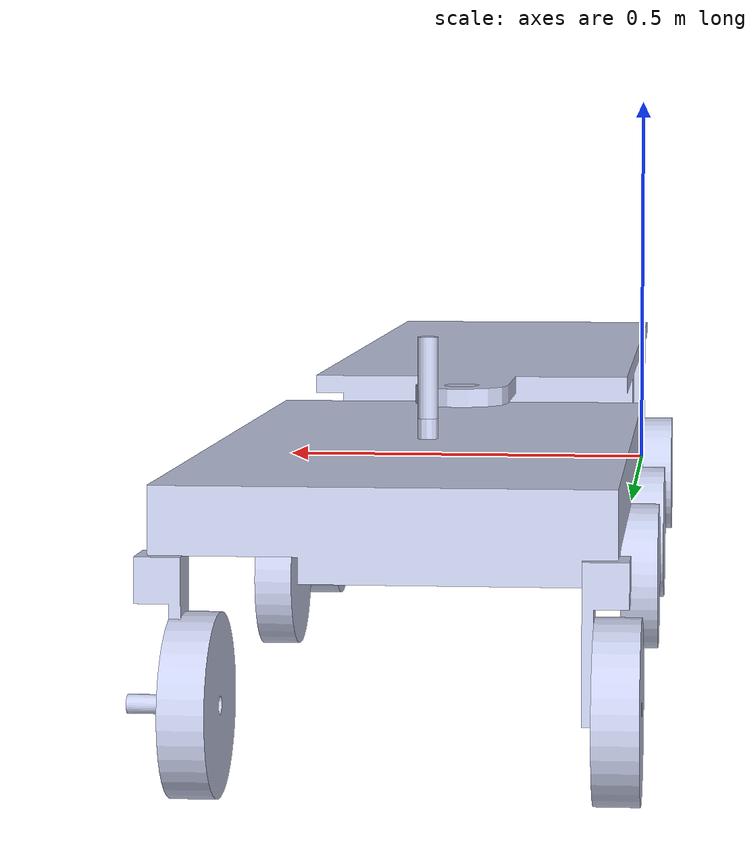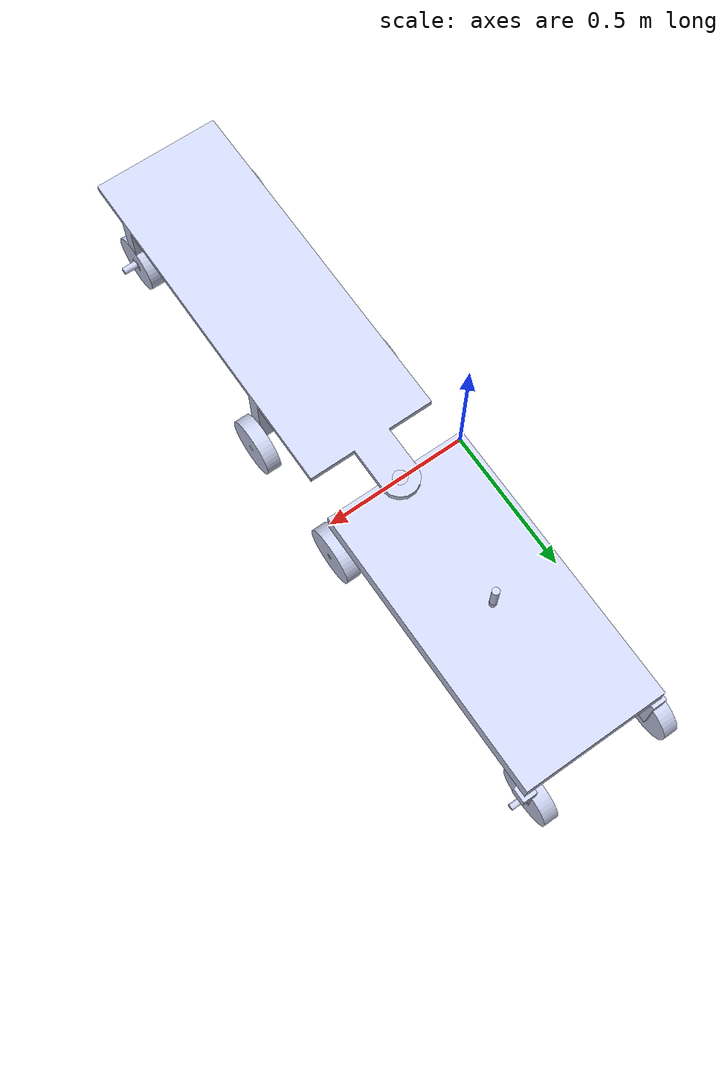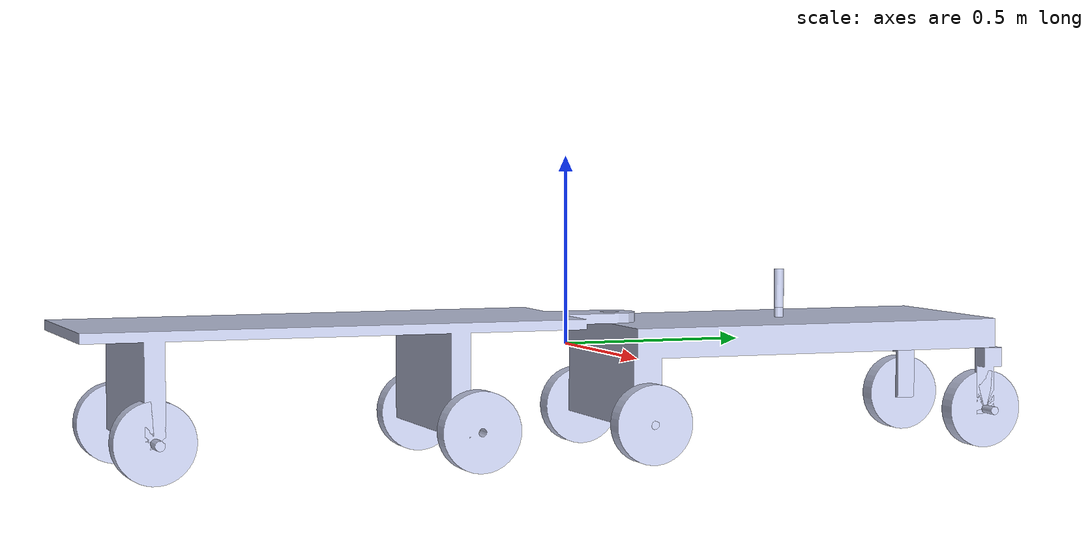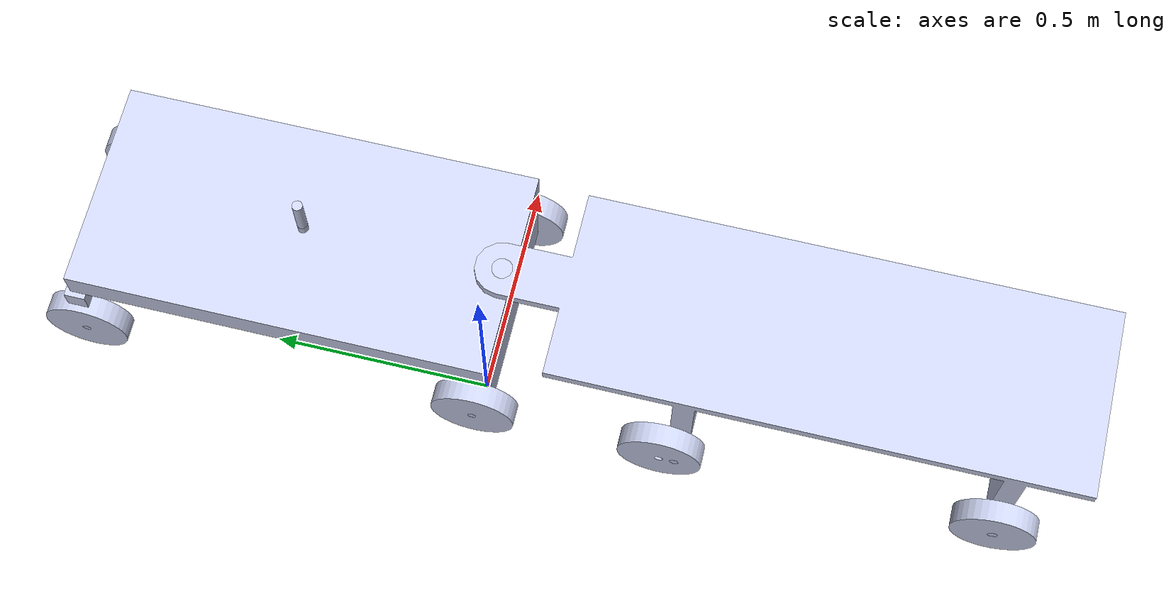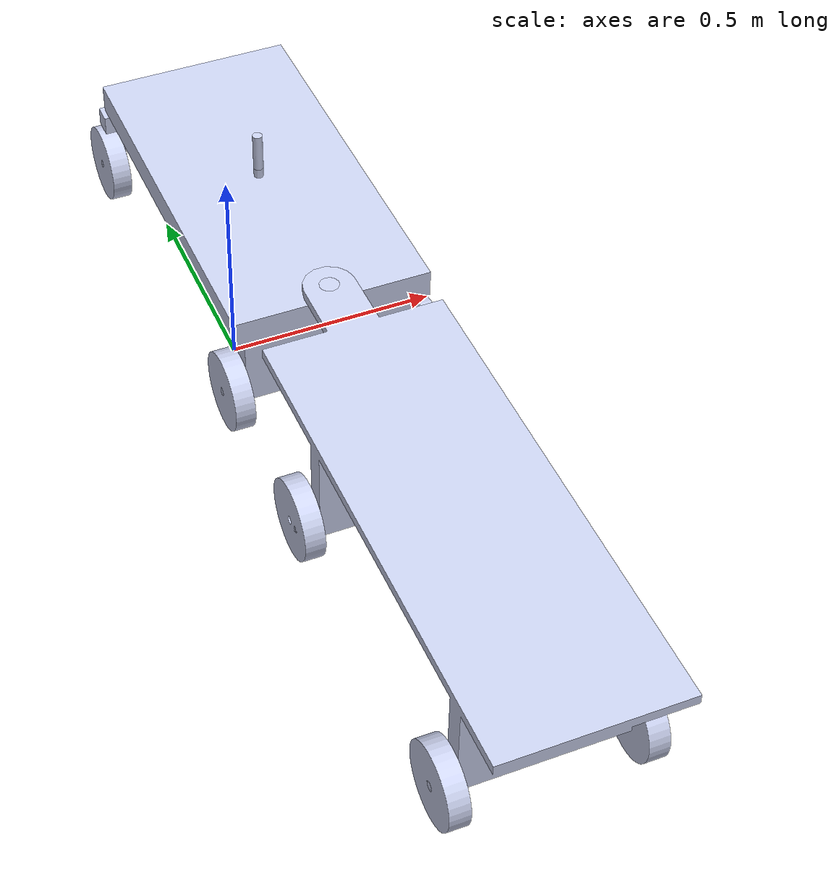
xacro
<?xml version="1.0"?>
<robot
  name="car_and_trailer" xmlns:xacro="http://ros.org/wiki/xacro">
  <link
    name="base_link">
    <inertial>
      <origin
        xyz="0.254 0.442216009225132 0.0199373734974326"
        rpy="0 0 0" />
      <mass
        value="45.8674211610964" />
      <inertia
        ixx="4.71504582583239"
        ixy="-7.73092194649668E-17"
        ixz="-1.15927084096081E-16"
        iyy="1.08472485190803"
        iyz="-0.316618072863205"
        izz="5.55558636298786" />
    </inertial>
    <visual>
      <origin
        xyz="0 0 0"
        rpy="0 0 0" />
      <geometry>
        <mesh
          filename="package://car_and_trailer/meshes/base_link.STL" />
      </geometry>
      <material
        name="">
        <color
          rgba="0.792156862745098 0.819607843137255 0.933333333333333 1" />
      </material>
    </visual>
    <collision>
      <origin
        xyz="0 0 0"
        rpy="0 0 0" />
      <geometry>
        <mesh
          filename="package://car_and_trailer/meshes/base_link.STL" />
      </geometry>
    </collision>
  </link>
  <link
    name="Steer_Left">
    <inertial>
      <origin
        xyz="-0.488789550969635 1.0033 0.0730308461748111"
        rpy="0 0 0" />
      <mass
        value="0.205068851277686" />
      <inertia
        ixx="0.000542814148788568"
        ixy="8.49018783728658E-19"
        ixz="-7.80565059903451E-05"
        iyy="0.000546349438812291"
        iyz="1.09592188639126E-18"
        izz="9.40760107910819E-05" />
    </inertial>
    <visual>
      <origin
        xyz="0 0 0"
        rpy="0 0 0" />
      <geometry>
        <mesh
          filename="package://car_and_trailer/meshes/Steer_Left.STL" />
      </geometry>
      <material
        name="">
        <color
          rgba="0.792156862745098 0.819607843137255 0.933333333333333 1" />
      </material>
    </visual>
    <collision>
      <origin
        xyz="0 0 0"
        rpy="0 0 0" />
      <geometry>
        <mesh
          filename="package://car_and_trailer/meshes/Steer_Left.STL" />
      </geometry>
    </collision>
  </link>
  <joint
    name="Left_Steer"
    type="fixed">
    <origin
      xyz="0.508 2.0066 0"
      rpy="3.14159265358979 0 0" />
    <parent
      link="base_link" />
    <child
      link="Steer_Left" />
    <axis
      xyz="0 0 0" />
  </joint>
  <link
    name="Left_Front_Wheel">
    <inertial>
      <origin
        xyz="-2.22044604925031E-16 0 -0.0254"
        rpy="0 0 0" />
      <mass
        value="1.62962959682595" />
      <inertia
        ixx="0.00460132751039961"
        ixy="-7.56314231045415E-39"
        ixz="-9.18354961579912E-39"
        iyy="0.00460132751039961"
        iyz="-8.3042856448893E-36"
        izz="0.00850174046700706" />
    </inertial>
    <visual>
      <origin
        xyz="0 0 0"
        rpy="0 0 0" />
      <geometry>
        <mesh
          filename="package://car_and_trailer/meshes/Left_Front_Wheel.STL" />
      </geometry>
      <material
        name="">
        <color
          rgba="0.792156862745098 0.819607843137255 0.933333333333333 1" />
      </material>
    </visual>
    <collision>
      <origin
        xyz="0 0 0"
        rpy="0 0 0" />
      <geometry>
        <mesh
          filename="package://car_and_trailer/meshes/Left_Front_Wheel.STL" />
      </geometry>
    </collision>
  </link>
  <joint
    name="Left_Front_Wheel_joint"
    type="continuous">
    <origin
      xyz="-0.4826 1.0033 0.1651"
      rpy="-1.5707963267949 0 -1.5707963267949" />
    <parent
      link="Steer_Left" />
    <child
      link="Left_Front_Wheel" />
    <axis
      xyz="0 0 1" />
  </joint>
  <link
    name="Steer_Right">
    <inertial>
      <origin
        xyz="-0.488789550969635 1.0033 0.073030846174811"
        rpy="0 0 0" />
      <mass
        value="0.205068851277686" />
      <inertia
        ixx="0.000542814148788574"
        ixy="3.00990364412103E-20"
        ixz="-7.80565059903447E-05"
        iyy="0.00054634943881229"
        iyz="3.72059530276015E-20"
        izz="9.4076010791088E-05" />
    </inertial>
    <visual>
      <origin
        xyz="0 0 0"
        rpy="0 0 0" />
      <geometry>
        <mesh
          filename="package://car_and_trailer/meshes/Steer_Right.STL" />
      </geometry>
      <material
        name="">
        <color
          rgba="0.792156862745098 0.819607843137255 0.933333333333333 1" />
      </material>
    </visual>
    <collision>
      <origin
        xyz="0 0 0"
        rpy="0 0 0" />
      <geometry>
        <mesh
          filename="package://car_and_trailer/meshes/Steer_Right.STL" />
      </geometry>
    </collision>
  </link>
  <joint
    name="Rigth_Steer"
    type="fixed">
    <origin
      xyz="0 0 0"
      rpy="3.14159265358979 0 3.14159265358979" />
    <parent
      link="base_link" />
    <child
      link="Steer_Right" />
    <axis
      xyz="0 0 0" />
  </joint>
  <link
    name="Rigth_Front_Wheel">
    <inertial>
      <origin
        xyz="0 0 0.0254"
        rpy="0 0 0" />
      <mass
        value="1.62962959682594" />
      <inertia
        ixx="0.0046013275103996"
        ixy="-7.56314231045415E-39"
        ixz="-4.17161150360145E-36"
        iyy="0.0046013275103996"
        iyz="-8.30428564488929E-36"
        izz="0.00850174046700706" />
    </inertial>
    <visual>
      <origin
        xyz="0 0 0"
        rpy="0 0 0" />
      <geometry>
        <mesh
          filename="package://car_and_trailer/meshes/Rigth_Front_Wheel.STL" />
      </geometry>
      <material
        name="">
        <color
          rgba="0.792156862745098 0.819607843137255 0.933333333333333 1" />
      </material>
    </visual>
    <collision>
      <origin
        xyz="0 0 0"
        rpy="0 0 0" />
      <geometry>
        <mesh
          filename="package://car_and_trailer/meshes/Rigth_Front_Wheel.STL" />
      </geometry>
    </collision>
  </link>
  <joint
    name="Rigth_Front_Wheel_joint"
    type="continuous">
    <origin
      xyz="-0.4826 1.0033 0.1651"
      rpy="3.14159265358979 -1.5707963267949 0" />
    <parent
      link="Steer_Right" />
    <child
      link="Rigth_Front_Wheel" />
    <axis
      xyz="0 0 1" />
  </joint>
  <link
    name="Right_Back_Wheel">
    <inertial>
      <origin
        xyz="-6.93889390390723E-18 1.38777878078145E-16 0.0254"
        rpy="0 0 0" />
      <mass
        value="1.62962959682594" />
      <inertia
        ixx="0.0046013275103996"
        ixy="-7.56314231045415E-39"
        ixz="-4.17161150360144E-36"
        iyy="0.0046013275103996"
        iyz="-8.30428564488929E-36"
        izz="0.00850174046700706" />
    </inertial>
    <visual>
      <origin
        xyz="0 0 0"
        rpy="0 0 0" />
      <geometry>
        <mesh
          filename="package://car_and_trailer/meshes/Right_Back_Wheel.STL" />
      </geometry>
      <material
        name="">
        <color
          rgba="0.792156862745098 0.819607843137255 0.933333333333333 1" />
      </material>
    </visual>
    <collision>
      <origin
        xyz="0 0 0"
        rpy="0 0 0" />
      <geometry>
        <mesh
          filename="package://car_and_trailer/meshes/Right_Back_Wheel.STL" />
      </geometry>
    </collision>
  </link>
  <joint
    name="Right_Back_Wheel_joint"
    type="continuous">
    <origin
      xyz="0.4826 0.0381000000000003 -0.1651"
      rpy="1.5707963267949 0 1.5707963267949" />
    <parent
      link="base_link" />
    <child
      link="Right_Back_Wheel" />
    <axis
      xyz="0 0 1" />
  </joint>
  <link
    name="Left_Back_Wheel">
    <inertial>
      <origin
        xyz="0 1.38777878078145E-16 -6.93889390390723E-18"
        rpy="0 0 0" />
      <mass
        value="1.62962959682595" />
      <inertia
        ixx="0.00460132751039961"
        ixy="-7.56314231045466E-39"
        ixz="2.38823524459631E-19"
        iyy="0.00460132751039961"
        iyz="-8.3042856448893E-36"
        izz="0.00850174046700706" />
    </inertial>
    <visual>
      <origin
        xyz="0 0 0"
        rpy="0 0 0" />
      <geometry>
        <mesh
          filename="package://car_and_trailer/meshes/Left_Back_Wheel.STL" />
      </geometry>
      <material
        name="">
        <color
          rgba="0.792156862745098 0.819607843137255 0.933333333333333 1" />
      </material>
    </visual>
    <collision>
      <origin
        xyz="0 0 0"
        rpy="0 0 0" />
      <geometry>
        <mesh
          filename="package://car_and_trailer/meshes/Left_Back_Wheel.STL" />
      </geometry>
    </collision>
  </link>
  <joint
    name="Left_Back_Wheel_joint"
    type="continuous">
    <origin
      xyz="0 0.0381000000000003 -0.1651"
      rpy="1.5707963267949 0 1.5707963267949" />
    <parent
      link="base_link" />
    <child
      link="Left_Back_Wheel" />
    <axis
      xyz="0 0 1" />
  </joint>
  <link
    name="Lidar">
    <inertial>
      <origin
        xyz="0 0 0.0508"
        rpy="0 0 0" />
      <mass
        value="0.0514814798763057" />
      <inertia
        ixx="4.63609173816422E-05"
        ixy="1.91171029335894E-54"
        ixz="-4.83762878413658E-38"
        iyy="4.63609173816422E-05"
        iyz="-6.41845928115206E-38"
        izz="4.15172394462466E-06" />
    </inertial>
    <visual>
      <origin
        xyz="0 0 0"
        rpy="0 0 0" />
      <geometry>
        <mesh
          filename="package://car_and_trailer/meshes/Lidar.STL" />
      </geometry>
      <material
        name="">
        <color
          rgba="0.792156862745098 0.819607843137255 0.933333333333333 1" />
      </material>
    </visual>
    <collision>
      <origin
        xyz="0 0 0"
        rpy="0 0 0" />
      <geometry>
        <mesh
          filename="package://car_and_trailer/meshes/Lidar.STL" />
      </geometry>
    </collision>
  </link>
  <joint
    name="Lidar_joint"
    type="continuous">
    <origin
      xyz="0.254 0.508 0.1016"
      rpy="0 0 0" />
    <parent
      link="base_link" />
    <child
      link="Lidar" />
    <axis
      xyz="0 0 1" />
  </joint>
  <gazebo reference="Lidar">
  <sensor name="lidar" type="ray">
    <pose>0.0 0.0 0.0 0 0 0</pose>
    <always_on>true</always_on>
    <visualize>true</visualize>
    <update_rate>5</update_rate>
    <ray>
      <scan>
        <horizontal>
          <samples>360</samples>
          <resolution>1.00000</resolution>
          <min_angle>0.000000</min_angle>
          <max_angle>6.280000</max_angle>
        </horizontal>
      </scan>
      <range>
        <min>0.120000</min>
        <max>3.5</max>
        <resolution>0.015000</resolution>
      </range>
      <noise>
        <type>gaussian</type>
        <mean>0.0</mean>
        <stddev>0.01</stddev>
      </noise>
    </ray>
    <plugin name="scan" filename="libgazebo_ros_ray_sensor.so">
      <ros>
        <remapping>~/out:=scan</remapping>
      </ros>
      <output_type>sensor_msgs/LaserScan</output_type>
      <frame_name>Lidar</frame_name>
    </plugin>
  </sensor>
  </gazebo>
  <link
    name="Trailer">
    <inertial>
      <origin
        xyz="1.66533453693773E-16 -0.804111102029834 0.0275105834465963"
        rpy="0 0 0" />
      <mass
        value="27.2755326758408" />
      <inertia
        ixx="4.31133111414126"
        ixy="6.65415782568477E-16"
        ixz="-2.22750825253046E-16"
        iyy="0.66836978637258"
        iyz="-0.100077621756449"
        izz="4.58294264392293" />
    </inertial>
    <visual>
      <origin
        xyz="0 0 0"
        rpy="0 0 0" />
      <geometry>
        <mesh
          filename="package://car_and_trailer/meshes/Trailer.STL" />
      </geometry>
      <material
        name="">
        <color
          rgba="0.792156862745098 0.819607843137255 0.933333333333333 1" />
      </material>
    </visual>
    <collision>
      <origin
        xyz="0 0 0"
        rpy="0 0 0" />
      <geometry>
        <mesh
          filename="package://car_and_trailer/meshes/Trailer.STL" />
      </geometry>
    </collision>
  </link>
  <joint
    name="Trailer_joint"
    type="continuous">
    <origin
      xyz="0.254 0.0254 0"
      rpy="0 0 0" />
    <parent
      link="base_link" />
    <child
      link="Trailer" />
    <axis
      xyz="0 0 1" />
  </joint>
  <link
    name="Trailer_Left_Wheel">
    <inertial>
      <origin
        xyz="0 4.32667268468867E-17 -0.0254"
        rpy="0 0 0" />
      <mass
        value="1.62962959682595" />
      <inertia
        ixx="0.00460132751039961"
        ixy="-2.71050543121376E-20"
        ixz="4.27969795118175E-19"
        iyy="0.00460132751039961"
        iyz="1.30847375225861E-20"
        izz="0.00850174046700706" />
    </inertial>
    <visual>
      <origin
        xyz="0 0 0"
        rpy="0 0 0" />
      <geometry>
        <mesh
          filename="package://car_and_trailer/meshes/Trailer_Left_Wheel.STL" />
      </geometry>
      <material
        name="">
        <color
          rgba="0.792156862745098 0.819607843137255 0.933333333333333 1" />
      </material>
    </visual>
    <collision>
      <origin
        xyz="0 0 0"
        rpy="0 0 0" />
      <geometry>
        <mesh
          filename="package://car_and_trailer/meshes/Trailer_Left_Wheel.STL" />
      </geometry>
    </collision>
  </link>
  <joint
    name="Trailer_Left_Wheel_joint"
    type="continuous">
    <origin
      xyz="-0.2286 -0.44477638939552 -0.1651"
      rpy="1.5707963267949 0.0427063277818672 1.5707963267949" />
    <parent
      link="Trailer" />
    <child
      link="Trailer_Left_Wheel" />
    <axis
      xyz="0 0 1" />
  </joint>
  <link
    name="Trailer_Right_Wheel">
    <inertial>
      <origin
        xyz="0 4.32667268468867E-17 0.0253999999999999"
        rpy="0 0 0" />
      <mass
        value="1.62962959682594" />
      <inertia
        ixx="0.0046013275103996"
        ixy="-7.56314231044211E-39"
        ixz="3.36924666781802E-19"
        iyy="0.0046013275103996"
        iyz="-8.30428564488929E-36"
        izz="0.00850174046700706" />
    </inertial>
    <visual>
      <origin
        xyz="0 0 0"
        rpy="0 0 0" />
      <geometry>
        <mesh
          filename="package://car_and_trailer/meshes/Trailer_Right_Wheel.STL" />
      </geometry>
      <material
        name="">
        <color
          rgba="0.792156862745098 0.819607843137255 0.933333333333333 1" />
      </material>
    </visual>
    <collision>
      <origin
        xyz="0 0 0"
        rpy="0 0 0" />
      <geometry>
        <mesh
          filename="package://car_and_trailer/meshes/Trailer_Right_Wheel.STL" />
      </geometry>
    </collision>
  </link>
  <joint
    name="Trailer_Right_Wheel_joint"
    type="continuous">
    <origin
      xyz="0.2286 -0.4448 -0.1651"
      rpy="1.5708 0 1.5708" />
    <parent
      link="Trailer" />
    <child
      link="Trailer_Right_Wheel" />
    <axis
      xyz="0 0 1" />
  </joint>
  <link
    name="Trailer_Left_Back_Wheel">
    <inertial>
      <origin
        xyz="0 8.32667268468867E-17 -0.0254"
        rpy="0 0 0" />
      <mass
        value="1.62962959682595" />
      <inertia
        ixx="0.00460132751039961"
        ixy="-6.7762635780344E-20"
        ixz="4.27969795118175E-19"
        iyy="0.00460132751039961"
        iyz="1.30847375225861E-20"
        izz="0.00850174046700706" />
    </inertial>
    <visual>
      <origin
        xyz="0 0 0"
        rpy="0 0 0" />
      <geometry>
        <mesh
          filename="package://car_and_trailer/meshes/Trailer_Left_Back_Wheel.STL" />
      </geometry>
      <material
        name="">
        <color
          rgba="0.792156862745098 0.819607843137255 0.933333333333333 1" />
      </material>
    </visual>
    <collision>
      <origin
        xyz="0 0 0"
        rpy="0 0 0" />
      <geometry>
        <mesh
          filename="package://car_and_trailer/meshes/Trailer_Left_Back_Wheel.STL" />
      </geometry>
    </collision>
  </link>
  <joint
    name="Trailer_Left_Back_Wheel_joint"
    type="continuous">
    <origin
      xyz="-0.2286 -1.2448 -0.1651"
      rpy="1.5708 0.042706 1.5708" />
    <parent
      link="Trailer" />
    <child
      link="Trailer_Left_Back_Wheel" />
    <axis
      xyz="0 0 1" />
  </joint>
  <link
    name="Trailer_Right_Back_Wheel">
    <inertial>
      <origin
        xyz="-2.22044604925031E-16 5.55111512312578E-17 0.0254"
        rpy="0 0 0" />
      <mass
        value="1.62962959682594" />
      <inertia
        ixx="0.0046013275103996"
        ixy="-7.56314231044298E-39"
        ixz="3.36924666781802E-19"
        iyy="0.0046013275103996"
        iyz="-8.30428564488929E-36"
        izz="0.00850174046700706" />
    </inertial>
    <visual>
      <origin
        xyz="0 0 0"
        rpy="0 0 0" />
      <geometry>
        <mesh
          filename="package://car_and_trailer/meshes/Trailer_Right_Back_Wheel.STL" />
      </geometry>
      <material
        name="">
        <color
          rgba="0.792156862745098 0.819607843137255 0.933333333333333 1" />
      </material>
    </visual>
    <collision>
      <origin
        xyz="0 0 0"
        rpy="0 0 0" />
      <geometry>
        <mesh
          filename="package://car_and_trailer/meshes/Trailer_Right_Back_Wheel.STL" />
      </geometry>
    </collision>
  </link>
  <joint
    name="Trailer_Right_Back_Wheel_joint"
    type="continuous">
    <origin
      xyz="0.2286 -1.2448 -0.1651"
      rpy="1.5708 0 1.5708" />
    <parent
      link="Trailer" />
    <child
      link="Trailer_Right_Back_Wheel" />
    <axis
      xyz="0 0 1" />
  </joint>

  <ros2_control name="GazeboSystem" type="system">
    <hardware>
        <plugin>gazebo_ros2_control/GazeboSystem</plugin>
    </hardware>

    <!-- # Velocity Controllers -->
    <joint name="Right_Back_Wheel_joint">
        <command_interface name="velocity">
            <param name="min">-1000.0</param>
            <param name="max">1000.0</param>
        </command_interface>
        <state_interface name="velocity"/>
    </joint>

    <joint name="Left_Back_Wheel_joint">
        <command_interface name="velocity">
            <param name="min">-1000.0</param>
            <param name="max">1000.0</param>
        </command_interface>
        <state_interface name="velocity"/>
    </joint>

    <!-- # Position Controller -->
    <joint name="Left_Front_Wheel_joint">
        <command_interface name="position">
            <param name="min">-3.14</param>
            <param name="max">3.14</param>
        </command_interface>
        <state_interface name="position"/>
    </joint>

    <joint name="Rigth_Front_Wheel_joint">
        <command_interface name="position">
            <param name="min">-3.14</param>
            <param name="max">3.14</param>
        </command_interface>
        <state_interface name="position"/>
    </joint>

</ros2_control>

<gazebo>
    <plugin filename="libgazebo_ros2_control.so" name="gazebo_ros2_control">
        <parameters>$(find car_and_trailer)/config/control.yaml</parameters>
    </plugin>
</gazebo>

</robot>
